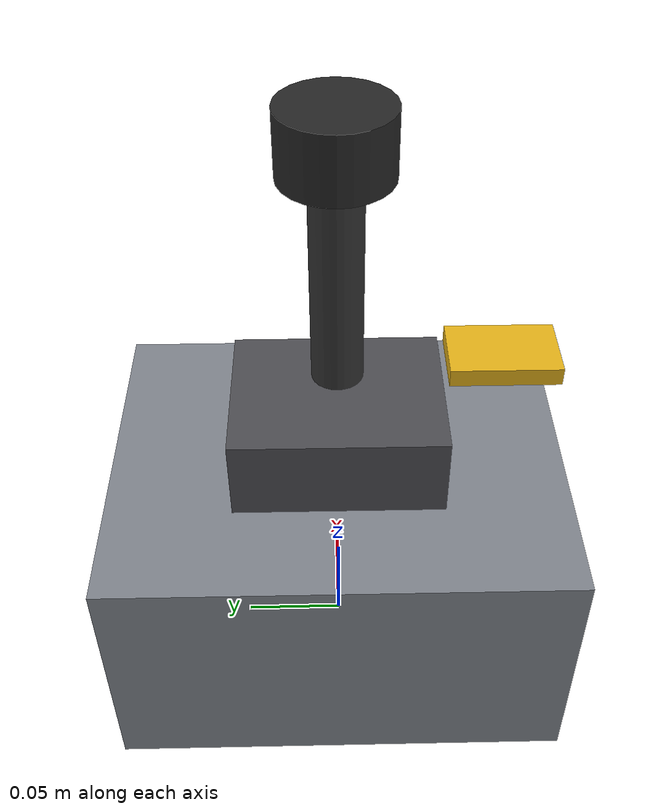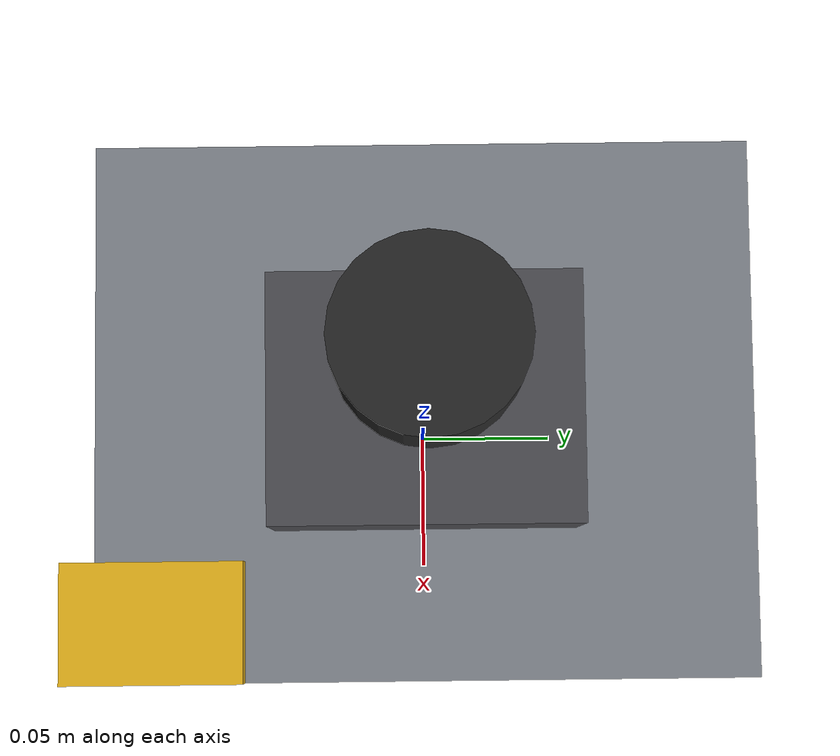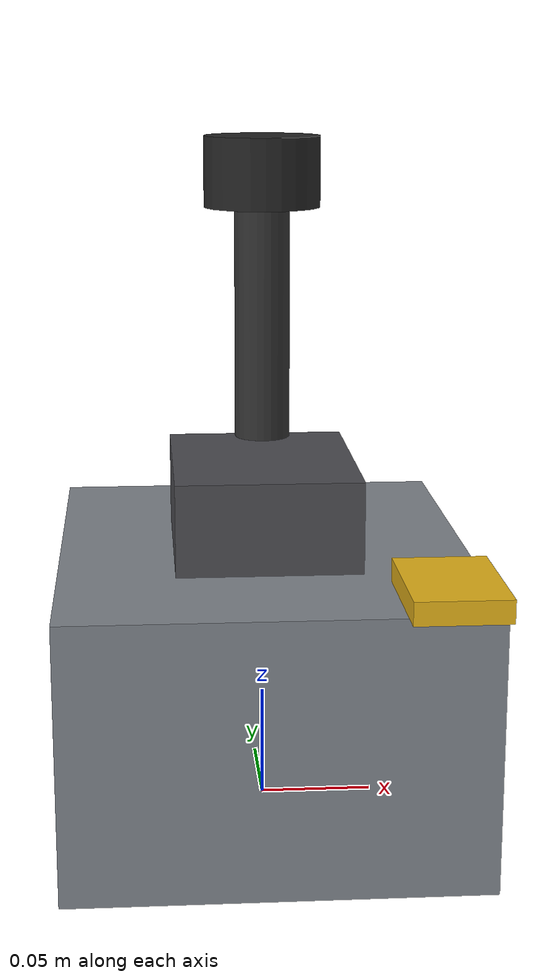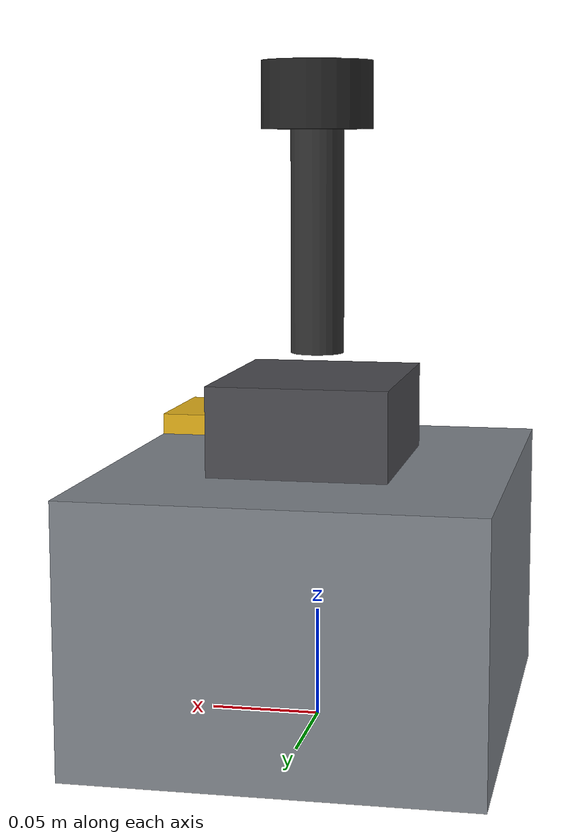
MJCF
<?xml version="1.0" encoding="utf-8"?>
<mujoco model="tablet_press">
  <compiler angle="radian" autolimits="true"/>
  <default>
    <default class="body"><geom contype="1" conaffinity="1"/></default>
  </default>
  <worldbody>
    <body name="base">
      <geom type="box" size="0.09 0.11 0.06" pos="0 0 0.06" rgba="0.5 0.52 0.55 1" class="body"/>
      <geom type="box" size="0.04 0.05 0.02" pos="0 0 0.14" rgba="0.3 0.3 0.32 1" class="body"/>
      <geom type="box" size="0.02 0.03 0.005" pos="0.07 -0.09 0.125" rgba="0.9 0.7 0.1 1" class="body"/>
      <body name="plunger" pos="0 0 0.22">
        <joint name="plunger_joint" type="slide" axis="0 0 1" range="-0.08 0" damping="2" frictionloss="0.5"/>
  <geom type="cylinder" size="0.012 0.05" pos="0 0 0" rgba="0.2 0.2 0.2 1" class="body"/>
  <geom type="cylinder" size="0.025 0.015" pos="0 0 0.065" rgba="0.15 0.15 0.15 1" class="body"/>
      </body>
    </body>
  </worldbody>
</mujoco>
